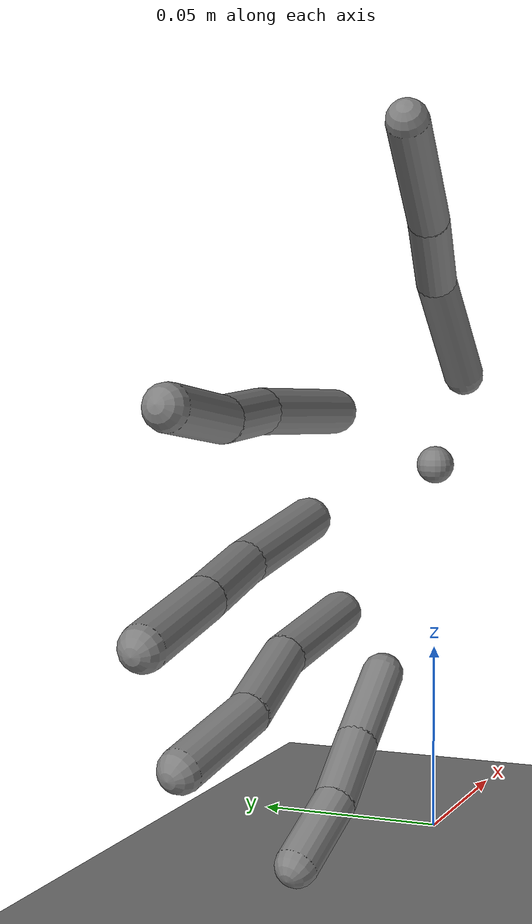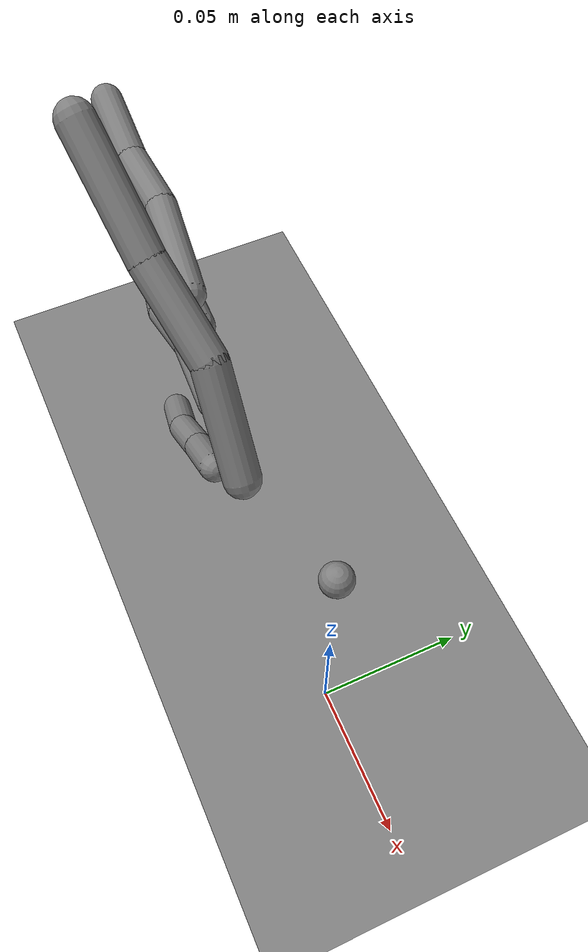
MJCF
<mujoco model="hand_capsule">
  <statistic extent="2" center="0 0 1" />
  <option timestep="0.00555" />
  <worldbody>
    <geom name="floor" type="plane" conaffinity="1" size="100 100 .2" />
    <body name="palm" pos="0 0 0.1" quat="1 0 0 0">
      <joint name="root" armature="1" damping="10" limited="false" margin="0.01" pos="0 0 0" type="free" />
      <geom name="palm" type="sphere" size="0.005" pos="0 0 0" />
      <body name="f0j0_1" quat="1 0 0 0" pos="-0.0881 -0.0052 0.0207">
        <geom name="f0j0_1" type="capsule" size="0.005" fromto=" 0 0 0 -0.0327 0.0040 0.0022" />
        <joint name="f0j0_1_y" armature="1.0" damping="10" limited="true" axis="0 1 0" range="-45 45" margin="0.01" pos="0 0 0" />
        <joint name="f0j0_1_z" armature="1.0" damping="10" limited="true" axis="0 0 1" range="-20 90" margin="0.01" pos="0 0 0" />
        <body name="f0j1_2" quat="1 0 0 0" pos="-0.0327 0.0040 0.0022">
          <geom name="f0j1_2" type="capsule" size="0.005" fromto=" 0 0 0 -0.0222 -0.0013 -0.0001" />
          <joint name="f0j1_2_z" armature="1.0" damping="10" limited="true" axis="0 0 1" range="0 90" margin="0.01" pos="0 0 0" />
          <body name="f0j2_3" quat="1 0 0 0" pos="-0.0222 -0.0013 -0.0001">
            <geom name="f0j2_3" type="capsule" size="0.005" fromto=" 0 0 0 -0.0233 0.0007 0.0040" />
            <joint name="f0j2_3_z" armature="1.0" damping="10" limited="true" axis="0 0 1" range="0 90" margin="0.01" pos="0 0 0" />
          </body>
        </body>
      </body>
      <body name="f1j0_4" quat="1 0 0 0" pos="-0.0947 -0.0015 -0.0034">
        <geom name="f1j0_4" type="capsule" size="0.005" fromto=" 0 0 0 -0.0312 0.0019 -0.0056" />
        <joint name="f1j0_4_y" armature="1.0" damping="10" limited="true" axis="0 1 0" range="-45 45" margin="0.01" pos="0 0 0" />
        <joint name="f1j0_4_z" armature="1.0" damping="10" limited="true" axis="0 0 1" range="-20 90" margin="0.01" pos="0 0 0" />
        <body name="f1j1_5" quat="1 0 0 0" pos="-0.0312 0.0019 -0.0056">
          <geom name="f1j1_5" type="capsule" size="0.005" fromto=" 0 0 0 -0.0229 -0.0013 -0.0039" />
          <joint name="f1j1_5_z" armature="1.0" damping="10" limited="true" axis="0 0 1" range="0 90" margin="0.01" pos="0 0 0" />
          <body name="f1j2_6" quat="1 0 0 0" pos="-0.0229 -0.0013 -0.0039">
            <geom name="f1j2_6" type="capsule" size="0.005" fromto=" 0 0 0 -0.0259 0.0006 -0.0053" />
            <joint name="f1j2_6_z" armature="1.0" damping="10" limited="true" axis="0 0 1" range="0 90" margin="0.01" pos="0 0 0" />
          </body>
        </body>
      </body>
      <body name="f2j0_7" quat="1 0 0 0" pos="-0.0688 -0.0099 -0.0432">
        <geom name="f2j0_7" type="capsule" size="0.005" fromto=" 0 0 0 -0.0170 0.0001 -0.0125" />
        <joint name="f2j0_7_y" armature="1.0" damping="10" limited="true" axis="0 1 0" range="-45 45" margin="0.01"  pos="0 0 0" />
        <joint name="f2j0_7_z" armature="1.0" damping="10" limited="true" axis="0 0 1" range="-20 90" margin="0.01" pos="0 0 0" />
        <body name="f2j1_8" quat="1 0 0 0" pos="-0.0170 0.0001 -0.0125">
          <geom name="f2j1_8" type="capsule" size="0.005" fromto=" 0 0 0 -0.0159 -0.0007 -0.0103" />
          <joint name="f2j1_8_z" armature="1.0" damping="10" limited="true" axis="0 0 1" range="0 90" margin="0.01" pos="0 0 0" />
          <body name="f2j2_9" quat="1 0 0 0" pos="-0.0159 -0.0007 -0.0103">
            <geom name="f2j2_9" type="capsule" size="0.005" fromto=" 0 0 0 -0.0159 0.0026 -0.0103" />
            <joint name="f2j2_9_z" armature="1.0" damping="10" limited="true" axis="0 0 1" range="0 90" margin="0.01" pos="0 0 0" />
          </body>
        </body>
      </body>
      <body name="f3j0_10" quat="1 0 0 0" pos="-0.0817 -0.0040 -0.0267">
        <geom name="f3j0_10" type="capsule" size="0.005" fromto=" 0 0 0 -0.0283 0.0021 -0.0051" />
        <joint name="f3j0_10_y" armature="1.0" damping="10" limited="true" axis="0 1 0" range="-45 45" margin="0.01" pos="0 0 0" />
        <joint name="f3j0_10_z" armature="1.0" damping="10" limited="true" axis="0 0 1" range="-20 90" margin="0.01" pos="0 0 0" />
        <body name="f3j1_11" quat="1 0 0 0" pos="-0.0283 0.0021 -0.0051">
          <geom name="f3j1_11" type="capsule" size="0.005" fromto=" 0 0 0 -0.0235 -0.0017 -0.0076" />
          <joint name="f3j1_11_z" armature="1.0" damping="10" limited="true" axis="0 0 1" range="0 90" margin="0.01" pos="0 0 0" />
          <body name="f3j2_12" quat="1 0 0 0" pos="-0.0235 -0.0017 -0.0076">
            <geom name="f3j2_12" type="capsule" size="0.005" fromto=" 0 0 0 -0.0229 0.0045 -0.0070" />
            <joint name="f3j2_12_z" armature="1.0" damping="10" limited="true" axis="0 0 1" range="0 90" margin="0.01" pos="0 0 0" />
          </body>
        </body>
      </body>
      <body name="f4j0_13" quat="1 0 0 0" pos="-0.0241 -0.0155 0.0258">
        <geom name="f4j0_13" type="capsule" size="0.005" fromto=" 0 0 0 -0.0196 0.0009 0.0237" />
        <joint name="f4j0_13_y" armature="1.0" damping="10" limited="true" axis="0 1 0" range="-45 45" margin="0.01" pos="0 0 0" />
        <joint name="f4j0_13_xz" armature="1.0" damping="10" limited="true" axis="1 0 1" range="-20 90" margin="0.01" pos="0 0 0" />
        <body name="f4j1_14" quat="1 0 0 0" pos="-0.0196 0.0009 0.0237">
          <geom name="f4j1_14" type="capsule" size="0.005" fromto=" 0 0 0 -0.0222 -0.0054 0.0145" />
          <joint name="f4j1_14_y" armature="1.0" damping="10" limited="true" axis="0 -1 0" range="0 90" margin="0.01" pos="0 0 0" />
          <body name="f4j2_15" quat="1 0 0 0" pos="-0.0222 -0.0054 0.0145">
            <geom name="f4j2_15" type="capsule" size="0.005" fromto=" 0 0 0 -0.0275 -0.0044 0.0207" />
            <joint name="f4j2_15_y" armature="1.0" damping="10" limited="true" axis="0 -1 0" range="0 90" margin="0.01" pos="0 0 0" />
          </body>
        </body>
      </body>
    </body>
  </worldbody>
</mujoco>
